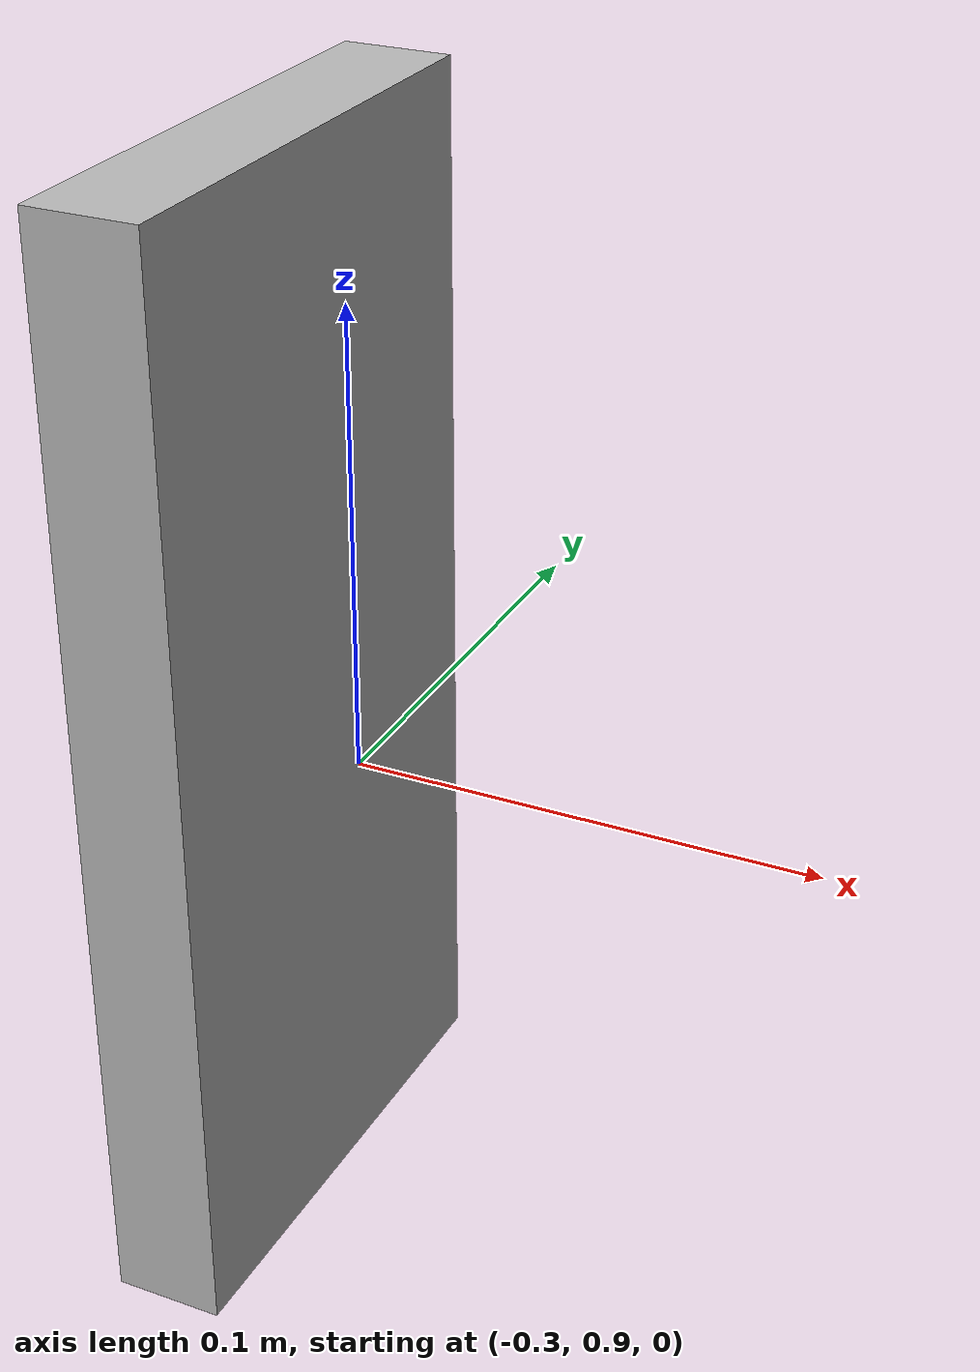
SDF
<?xml version="1.0" ?>
<sdf version="1.6">
  <model name="traffic_stop">
    <static>true</static>
    <link name="box">
      <pose>-0.33 0.92 0 0 0 -1.58</pose>
      <collision name="collision">
        <geometry>
          <box>
            <size>0.12 0.025 0.25</size>
          </box>
        </geometry>
      </collision>
      <visual name="visual">
        <geometry>
          <box>
            <size>0.12 0.025 0.25</size>
          </box>
        </geometry>
        <material>
          <script>
            <uri>model://turtlebot3_autorace_2020/traffic_stop/materials/scripts</uri>
            <uri>model://turtlebot3_autorace_2020/traffic_stop/materials/textures</uri>
            <name>traffic_stop</name>
          </script>
        </material>
      </visual>
    </link>
  </model>
</sdf>
